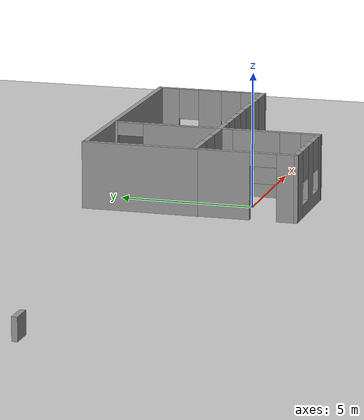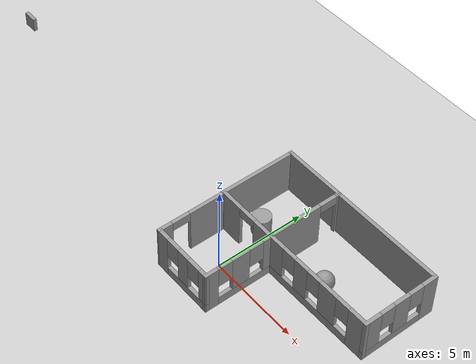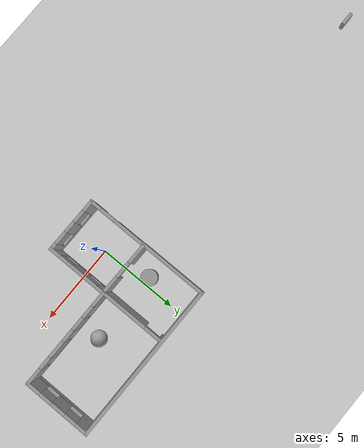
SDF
<sdf version="1.4">
 <world name="default">
  <model name="ground_plane">
   <static>1</static>
   <link name="link">
    <collision name="collision">
     <geometry><plane><normal>0 0 1</normal><size>100 100</size></plane></geometry>
     <surface><friction><ode><mu>100</mu><mu2>50</mu2></ode></friction></surface>
    </collision>
    <visual name="visual">
     <cast_shadows>0</cast_shadows>
     <geometry><plane><normal>0 0 1</normal><size>100 100</size></plane></geometry>
     <material>
      <script><uri>file://media/materials/scripts/gazebo.material</uri><name>Gazebo/Grey</name></script>
     </material>
    </visual>
    <velocity_decay><linear>0</linear><angular>0</angular></velocity_decay>
   </link>
  </model>
  <light name="sun" type="directional">
   <pose>0 0 10 0 -0 0</pose>
   <diffuse>0.8 0.8 0.8 1</diffuse>
   <specular>0.2 0.2 0.2 1</specular>
   <attenuation>
    <range>1000</range>
    <constant>0.9</constant>
    <linear>0.01</linear>
    <quadratic>0.001</quadratic>
   </attenuation>
   <direction>-0.5 0.1 -0.9</direction>
  </light>
  <model name="escenario3">
   <link name="Wall_16">
    <pose>-1.75348 -0.292954 0 0 0 -1.5708</pose>
    <visual name="Wall_16_Visual_0">
     <pose>-0.892642 0 1.25 0 -0 0</pose>
     <geometry><box><size>1.95254 0.2 2.5</size></box></geometry>
     <material>
      <script><uri>file://media/materials/scripts/gazebo.material</uri><name>Gazebo/Grey</name></script>
     </material>
    </visual>
    <collision name="Wall_16_Collision_0">
     <geometry><box><size>1.95254 0.2 2.5</size></box></geometry>
     <pose>-0.892642 0 1.25 0 -0 0</pose>
    </collision>
    <visual name="Wall_16_Visual_1">
     <pose>1.47627 0 1.25 0 -0 0</pose>
     <geometry><box><size>0.785283 0.2 2.5</size></box></geometry>
     <material>
      <script><uri>file://media/materials/scripts/gazebo.material</uri><name>Gazebo/Grey</name></script>
     </material>
    </visual>
    <collision name="Wall_16_Collision_1">
     <geometry><box><size>0.785283 0.2 2.5</size></box></geometry>
     <pose>1.47627 0 1.25 0 -0 0</pose>
    </collision>
    <visual name="Wall_16_Visual_2">
     <pose>0.58363 0 2.25 0 -0 0</pose>
     <geometry><box><size>1 0.2 0.5</size></box></geometry>
     <material>
      <script><uri>file://media/materials/scripts/gazebo.material</uri><name>Gazebo/Grey</name></script>
     </material>
    </visual>
    <collision name="Wall_16_Collision_2">
     <geometry><box><size>1 0.2 0.5</size></box></geometry>
     <pose>0.58363 0 2.25 0 -0 0</pose>
    </collision>
    <velocity_decay><linear>0</linear><angular>0</angular></velocity_decay>
   </link>
   <link name="Wall_17">
    <pose>-0.051503 -2.06741 0 0 0 -0.003255</pose>
    <visual name="Wall_17_Visual_0">
     <pose>-1.41696 0 1.25 0 -0 0</pose>
     <geometry><box><size>0.770362 0.2 2.5</size></box></geometry>
     <material>
      <script><uri>file://media/materials/scripts/gazebo.material</uri><name>Gazebo/Grey</name></script>
     </material>
    </visual>
    <collision name="Wall_17_Collision_0">
     <geometry><box><size>0.770362 0.2 2.5</size></box></geometry>
     <pose>-1.41696 0 1.25 0 -0 0</pose>
    </collision>
    <visual name="Wall_17_Visual_1">
     <pose>0.385181 0 0.25 0 -0 0</pose>
     <geometry><box><size>2.83391 0.2 0.5</size></box></geometry>
     <material>
      <script><uri>file://media/materials/scripts/gazebo.material</uri><name>Gazebo/Grey</name></script>
     </material>
    </visual>
    <collision name="Wall_17_Collision_1">
     <geometry><box><size>2.83391 0.2 0.5</size></box></geometry>
     <pose>0.385181 0 0.25 0 -0 0</pose>
    </collision>
    <visual name="Wall_17_Visual_2">
     <pose>0.124965 0 1.5 0 -0 0</pose>
     <geometry><box><size>0.71348 0.2 2</size></box></geometry>
     <material>
      <script><uri>file://media/materials/scripts/gazebo.material</uri><name>Gazebo/Grey</name></script>
     </material>
    </visual>
    <collision name="Wall_17_Collision_2">
     <geometry><box><size>0.71348 0.2 2</size></box></geometry>
     <pose>0.124965 0 1.5 0 -0 0</pose>
    </collision>
    <visual name="Wall_17_Visual_3">
     <pose>1.54192 0 1.5 0 -0 0</pose>
     <geometry><box><size>0.520432 0.2 2</size></box></geometry>
     <material>
      <script><uri>file://media/materials/scripts/gazebo.material</uri><name>Gazebo/Grey</name></script>
     </material>
    </visual>
    <collision name="Wall_17_Collision_3">
     <geometry><box><size>0.520432 0.2 2</size></box></geometry>
     <pose>1.54192 0 1.5 0 -0 0</pose>
    </collision>
    <visual name="Wall_17_Visual_4">
     <pose>-0.631775 0 1.9 0 -0 0</pose>
     <geometry><box><size>0.8 0.2 1.2</size></box></geometry>
     <material>
      <script><uri>file://media/materials/scripts/gazebo.material</uri><name>Gazebo/Grey</name></script>
     </material>
    </visual>
    <collision name="Wall_17_Collision_4">
     <geometry><box><size>0.8 0.2 1.2</size></box></geometry>
     <pose>-0.631775 0 1.9 0 -0 0</pose>
    </collision>
    <visual name="Wall_17_Visual_5">
     <pose>0.881705 0 1.9 0 -0 0</pose>
     <geometry><box><size>0.8 0.2 1.2</size></box></geometry>
     <material>
      <script><uri>file://media/materials/scripts/gazebo.material</uri><name>Gazebo/Grey</name></script>
     </material>
    </visual>
    <collision name="Wall_17_Collision_5">
     <geometry><box><size>0.8 0.2 1.2</size></box></geometry>
     <pose>0.881705 0 1.9 0 -0 0</pose>
    </collision>
    <velocity_decay><linear>0</linear><angular>0</angular></velocity_decay>
   </link>
   <link name="Wall_18">
    <pose>1.65048 -0.199638 0 0 -0 1.5708</pose>
    <visual name="Wall_18_Visual_0">
     <pose>-1.59549 0 1.25 0 -0 0</pose>
     <geometry><box><size>0.75565 0.2 2.5</size></box></geometry>
     <material>
      <script><uri>file://media/materials/scripts/gazebo.material</uri><name>Gazebo/Grey</name></script>
     </material>
    </visual>
    <collision name="Wall_18_Collision_0">
     <geometry><box><size>0.75565 0.2 2.5</size></box></geometry>
     <pose>-1.59549 0 1.25 0 -0 0</pose>
    </collision>
    <visual name="Wall_18_Visual_1">
     <pose>0.377825 0 0.25 0 -0 0</pose>
     <geometry><box><size>3.19097 0.2 0.5</size></box></geometry>
     <material>
      <script><uri>file://media/materials/scripts/gazebo.material</uri><name>Gazebo/Grey</name></script>
     </material>
    </visual>
    <collision name="Wall_18_Collision_1">
     <geometry><box><size>3.19097 0.2 0.5</size></box></geometry>
     <pose>0.377825 0 0.25 0 -0 0</pose>
    </collision>
    <visual name="Wall_18_Visual_2">
     <pose>0.079398 0 1.5 0 -0 0</pose>
     <geometry><box><size>0.994117 0.2 2</size></box></geometry>
     <material>
      <script><uri>file://media/materials/scripts/gazebo.material</uri><name>Gazebo/Grey</name></script>
     </material>
    </visual>
    <collision name="Wall_18_Collision_2">
     <geometry><box><size>0.994117 0.2 2</size></box></geometry>
     <pose>0.079398 0 1.5 0 -0 0</pose>
    </collision>
    <visual name="Wall_18_Visual_3">
     <pose>1.67488 0 1.5 0 -0 0</pose>
     <geometry><box><size>0.596854 0.2 2</size></box></geometry>
     <material>
      <script><uri>file://media/materials/scripts/gazebo.material</uri><name>Gazebo/Grey</name></script>
     </material>
    </visual>
    <collision name="Wall_18_Collision_3">
     <geometry><box><size>0.596854 0.2 2</size></box></geometry>
     <pose>1.67488 0 1.5 0 -0 0</pose>
    </collision>
    <visual name="Wall_18_Visual_4">
     <pose>-0.817661 0 1.9 0 -0 0</pose>
     <geometry><box><size>0.8 0.2 1.2</size></box></geometry>
     <material>
      <script><uri>file://media/materials/scripts/gazebo.material</uri><name>Gazebo/Grey</name></script>
     </material>
    </visual>
    <collision name="Wall_18_Collision_4">
     <geometry><box><size>0.8 0.2 1.2</size></box></geometry>
     <pose>-0.817661 0 1.9 0 -0 0</pose>
    </collision>
    <visual name="Wall_18_Visual_5">
     <pose>0.976456 0 1.9 0 -0 0</pose>
     <geometry><box><size>0.8 0.2 1.2</size></box></geometry>
     <material>
      <script><uri>file://media/materials/scripts/gazebo.material</uri><name>Gazebo/Grey</name></script>
     </material>
    </visual>
    <collision name="Wall_18_Collision_5">
     <geometry><box><size>0.8 0.2 1.2</size></box></geometry>
     <pose>0.976456 0 1.9 0 -0 0</pose>
    </collision>
    <velocity_decay><linear>0</linear><angular>0</angular></velocity_decay>
   </link>
   <link name="Wall_19">
    <pose>-0.009615 1.69126 0 0 -0 3.131</pose>
    <visual name="Wall_19_Visual_0">
     <pose>-1.13681 0 1.25 0 -0 0</pose>
     <geometry><box><size>1.24731 0.2 2.5</size></box></geometry>
     <material>
      <script><uri>file://media/materials/scripts/gazebo.material</uri><name>Gazebo/Grey</name></script>
     </material>
    </visual>
    <collision name="Wall_19_Collision_0">
     <geometry><box><size>1.24731 0.2 2.5</size></box></geometry>
     <pose>-1.13681 0 1.25 0 -0 0</pose>
    </collision>
    <visual name="Wall_19_Visual_1">
     <pose>1.12365 0 1.25 0 -0 0</pose>
     <geometry><box><size>1.27362 0.2 2.5</size></box></geometry>
     <material>
      <script><uri>file://media/materials/scripts/gazebo.material</uri><name>Gazebo/Grey</name></script>
     </material>
    </visual>
    <collision name="Wall_19_Collision_1">
     <geometry><box><size>1.27362 0.2 2.5</size></box></geometry>
     <pose>1.12365 0 1.25 0 -0 0</pose>
    </collision>
    <visual name="Wall_19_Visual_2">
     <pose>-0.013157 0 2.25 0 -0 0</pose>
     <geometry><box><size>1 0.2 0.5</size></box></geometry>
     <material>
      <script><uri>file://media/materials/scripts/gazebo.material</uri><name>Gazebo/Grey</name></script>
     </material>
    </visual>
    <collision name="Wall_19_Collision_2">
     <geometry><box><size>1 0.2 0.5</size></box></geometry>
     <pose>-0.013157 0 2.25 0 -0 0</pose>
    </collision>
    <velocity_decay><linear>0</linear><angular>0</angular></velocity_decay>
   </link>
   <link name="Wall_21">
    <collision name="Wall_21_Collision">
     <geometry><box><size>4.38627 0.2 2.5</size></box></geometry>
     <pose>0 0 1.25 0 -0 0</pose>
    </collision>
    <visual name="Wall_21_Visual">
     <pose>0 0 1.25 0 -0 0</pose>
     <geometry><box><size>4.38627 0.2 2.5</size></box></geometry>
     <material>
      <script><uri>file://media/materials/scripts/gazebo.material</uri><name>Gazebo/Grey</name></script>
     </material>
    </visual>
    <velocity_decay><linear>0</linear><angular>0</angular></velocity_decay>
    <pose>-1.77304 3.74942 0 0 -0 1.5708</pose>
   </link>
   <link name="Wall_22">
    <collision name="Wall_22_Collision">
     <geometry><box><size>9.90934 0.2 2.5</size></box></geometry>
     <pose>0 0 1.25 0 -0 0</pose>
    </collision>
    <visual name="Wall_22_Visual">
     <pose>0 0 1.25 0 -0 0</pose>
     <geometry><box><size>9.90934 0.2 2.5</size></box></geometry>
     <material>
      <script><uri>file://media/materials/scripts/gazebo.material</uri><name>Gazebo/Grey</name></script>
     </material>
    </visual>
    <velocity_decay><linear>0</linear><angular>0</angular></velocity_decay>
    <pose>3.08163 5.84256 0 0 -0 0</pose>
   </link>
   <link name="Wall_23">
    <pose>7.9363 3.76701 0 0 0 -1.5708</pose>
    <visual name="Wall_23_Visual_0">
     <pose>-1.74514 0 1.25 0 -0 0</pose>
     <geometry><box><size>0.860974 0.2 2.5</size></box></geometry>
     <material>
      <script><uri>file://media/materials/scripts/gazebo.material</uri><name>Gazebo/Grey</name></script>
     </material>
    </visual>
    <collision name="Wall_23_Collision_0">
     <geometry><box><size>0.860974 0.2 2.5</size></box></geometry>
     <pose>-1.74514 0 1.25 0 -0 0</pose>
    </collision>
    <visual name="Wall_23_Visual_1">
     <pose>0.430487 0 0.25 0 -0 0</pose>
     <geometry><box><size>3.49027 0.2 0.5</size></box></geometry>
     <material>
      <script><uri>file://media/materials/scripts/gazebo.material</uri><name>Gazebo/Grey</name></script>
     </material>
    </visual>
    <collision name="Wall_23_Collision_1">
     <geometry><box><size>3.49027 0.2 0.5</size></box></geometry>
     <pose>0.430487 0 0.25 0 -0 0</pose>
    </collision>
    <visual name="Wall_23_Visual_2">
     <pose>-0.052768 0 1.5 0 -0 0</pose>
     <geometry><box><size>0.923759 0.2 2</size></box></geometry>
     <material>
      <script><uri>file://media/materials/scripts/gazebo.material</uri><name>Gazebo/Grey</name></script>
     </material>
    </visual>
    <collision name="Wall_23_Collision_2">
     <geometry><box><size>0.923759 0.2 2</size></box></geometry>
     <pose>-0.052768 0 1.5 0 -0 0</pose>
    </collision>
    <visual name="Wall_23_Visual_3">
     <pose>1.69237 0 1.5 0 -0 0</pose>
     <geometry><box><size>0.96651 0.2 2</size></box></geometry>
     <material>
      <script><uri>file://media/materials/scripts/gazebo.material</uri><name>Gazebo/Grey</name></script>
     </material>
    </visual>
    <collision name="Wall_23_Collision_3">
     <geometry><box><size>0.96651 0.2 2</size></box></geometry>
     <pose>1.69237 0 1.5 0 -0 0</pose>
    </collision>
    <visual name="Wall_23_Visual_4">
     <pose>-0.914648 0 1.9 0 -0 0</pose>
     <geometry><box><size>0.8 0.2 1.2</size></box></geometry>
     <material>
      <script><uri>file://media/materials/scripts/gazebo.material</uri><name>Gazebo/Grey</name></script>
     </material>
    </visual>
    <collision name="Wall_23_Collision_4">
     <geometry><box><size>0.8 0.2 1.2</size></box></geometry>
     <pose>-0.914648 0 1.9 0 -0 0</pose>
    </collision>
    <visual name="Wall_23_Visual_5">
     <pose>0.809112 0 1.9 0 -0 0</pose>
     <geometry><box><size>0.8 0.2 1.2</size></box></geometry>
     <material>
      <script><uri>file://media/materials/scripts/gazebo.material</uri><name>Gazebo/Grey</name></script>
     </material>
    </visual>
    <collision name="Wall_23_Collision_5">
     <geometry><box><size>0.8 0.2 1.2</size></box></geometry>
     <pose>0.809112 0 1.9 0 -0 0</pose>
    </collision>
    <velocity_decay><linear>0</linear><angular>0</angular></velocity_decay>
   </link>
   <link name="Wall_24">
    <pose>4.7878 1.69147 0 0 -0 3.14159</pose>
    <visual name="Wall_24_Visual_0">
     <pose>-2.69492 0 1.25 0 -0 0</pose>
     <geometry><box><size>1.10715 0.2 2.5</size></box></geometry>
     <material>
      <script><uri>file://media/materials/scripts/gazebo.material</uri><name>Gazebo/Grey</name></script>
     </material>
    </visual>
    <collision name="Wall_24_Collision_0">
     <geometry><box><size>1.10715 0.2 2.5</size></box></geometry>
     <pose>-2.69492 0 1.25 0 -0 0</pose>
    </collision>
    <visual name="Wall_24_Visual_1">
     <pose>0.553575 0 0.25 0 -0 0</pose>
     <geometry><box><size>5.38985 0.2 0.5</size></box></geometry>
     <material>
      <script><uri>file://media/materials/scripts/gazebo.material</uri><name>Gazebo/Grey</name></script>
     </material>
    </visual>
    <collision name="Wall_24_Collision_1">
     <geometry><box><size>5.38985 0.2 0.5</size></box></geometry>
     <pose>0.553575 0 0.25 0 -0 0</pose>
    </collision>
    <visual name="Wall_24_Visual_2">
     <pose>-0.791522 0 1.5 0 -0 0</pose>
     <geometry><box><size>1.09965 0.2 2</size></box></geometry>
     <material>
      <script><uri>file://media/materials/scripts/gazebo.material</uri><name>Gazebo/Grey</name></script>
     </material>
    </visual>
    <collision name="Wall_24_Collision_2">
     <geometry><box><size>1.09965 0.2 2</size></box></geometry>
     <pose>-0.791522 0 1.5 0 -0 0</pose>
    </collision>
    <visual name="Wall_24_Visual_3">
     <pose>0.985005 0 1.5 0 -0 0</pose>
     <geometry><box><size>0.853402 0.2 2</size></box></geometry>
     <material>
      <script><uri>file://media/materials/scripts/gazebo.material</uri><name>Gazebo/Grey</name></script>
     </material>
    </visual>
    <collision name="Wall_24_Collision_3">
     <geometry><box><size>0.853402 0.2 2</size></box></geometry>
     <pose>0.985005 0 1.5 0 -0 0</pose>
    </collision>
    <visual name="Wall_24_Visual_4">
     <pose>2.7301 0 1.5 0 -0 0</pose>
     <geometry><box><size>1.03679 0.2 2</size></box></geometry>
     <material>
      <script><uri>file://media/materials/scripts/gazebo.material</uri><name>Gazebo/Grey</name></script>
     </material>
    </visual>
    <collision name="Wall_24_Collision_4">
     <geometry><box><size>1.03679 0.2 2</size></box></geometry>
     <pose>2.7301 0 1.5 0 -0 0</pose>
    </collision>
    <visual name="Wall_24_Visual_5">
     <pose>-1.74135 0 1.9 0 -0 0</pose>
     <geometry><box><size>0.8 0.2 1.2</size></box></geometry>
     <material>
      <script><uri>file://media/materials/scripts/gazebo.material</uri><name>Gazebo/Grey</name></script>
     </material>
    </visual>
    <collision name="Wall_24_Collision_5">
     <geometry><box><size>0.8 0.2 1.2</size></box></geometry>
     <pose>-1.74135 0 1.9 0 -0 0</pose>
    </collision>
    <visual name="Wall_24_Visual_6">
     <pose>0.158304 0 1.9 0 -0 0</pose>
     <geometry><box><size>0.8 0.2 1.2</size></box></geometry>
     <material>
      <script><uri>file://media/materials/scripts/gazebo.material</uri><name>Gazebo/Grey</name></script>
     </material>
    </visual>
    <collision name="Wall_24_Collision_6">
     <geometry><box><size>0.8 0.2 1.2</size></box></geometry>
     <pose>0.158304 0 1.9 0 -0 0</pose>
    </collision>
    <visual name="Wall_24_Visual_7">
     <pose>1.81171 0 1.9 0 -0 0</pose>
     <geometry><box><size>0.8 0.2 1.2</size></box></geometry>
     <material>
      <script><uri>file://media/materials/scripts/gazebo.material</uri><name>Gazebo/Grey</name></script>
     </material>
    </visual>
    <collision name="Wall_24_Collision_7">
     <geometry><box><size>0.8 0.2 1.2</size></box></geometry>
     <pose>1.81171 0 1.9 0 -0 0</pose>
    </collision>
    <velocity_decay><linear>0</linear><angular>0</angular></velocity_decay>
   </link>
   <link name="Wall_25">
    <pose>1.6393 3.74942 0 0 -0 1.5708</pose>
    <visual name="Wall_25_Visual_0">
     <pose>-0.634207 0 1.25 0 -0 0</pose>
     <geometry><box><size>3.04765 0.2 2.5</size></box></geometry>
     <material>
      <script><uri>file://media/materials/scripts/gazebo.material</uri><name>Gazebo/Grey</name></script>
     </material>
    </visual>
    <collision name="Wall_25_Collision_0">
     <geometry><box><size>3.04765 0.2 2.5</size></box></geometry>
     <pose>-0.634207 0 1.25 0 -0 0</pose>
    </collision>
    <visual name="Wall_25_Visual_1">
     <pose>2.02383 0 1.25 0 -0 0</pose>
     <geometry><box><size>0.268413 0.2 2.5</size></box></geometry>
     <material>
      <script><uri>file://media/materials/scripts/gazebo.material</uri><name>Gazebo/Grey</name></script>
     </material>
    </visual>
    <collision name="Wall_25_Collision_1">
     <geometry><box><size>0.268413 0.2 2.5</size></box></geometry>
     <pose>2.02383 0 1.25 0 -0 0</pose>
    </collision>
    <visual name="Wall_25_Visual_2">
     <pose>1.38962 0 2.25 0 -0 0</pose>
     <geometry><box><size>1 0.2 0.5</size></box></geometry>
     <material>
      <script><uri>file://media/materials/scripts/gazebo.material</uri><name>Gazebo/Grey</name></script>
     </material>
    </visual>
    <collision name="Wall_25_Collision_2">
     <geometry><box><size>1 0.2 0.5</size></box></geometry>
     <pose>1.38962 0 2.25 0 -0 0</pose>
    </collision>
    <velocity_decay><linear>0</linear><angular>0</angular></velocity_decay>
   </link>
   <link name="Window_5">
    <collision name="Window_5_Collision">
     <geometry><box><size>0.8 0.2 0.8</size></box></geometry>
     <pose>0 0 0.4 0 -0 0</pose>
    </collision>
    <visual name="Window_5_Visual">
     <pose>0 0 0.4 0 -0 0</pose>
     <geometry><box><size>0.8 0.2 0.8</size></box></geometry>
     <material>
      <script><uri>file://media/materials/scripts/gazebo.material</uri><name>Gazebo/Grey</name></script>
     </material>
    </visual>
    <velocity_decay><linear>0</linear><angular>0</angular></velocity_decay>
    <pose>-19.5031 2.25433 0.5 0 -0 0</pose>
   </link>
   <static>1</static>
  </model>
  <physics type="ode">
   <max_step_size>0.001</max_step_size>
   <real_time_factor>1</real_time_factor>
   <real_time_update_rate>1000</real_time_update_rate>
   <gravity>0 0 -9.8</gravity>
  </physics>
  <scene><ambient>0.4 0.4 0.4 1</ambient><background>0.7 0.7 0.7 1</background><shadows>1</shadows></scene>
  <spherical_coordinates>
   <surface_model>EARTH_WGS84</surface_model>
   <latitude_deg>0</latitude_deg>
   <longitude_deg>0</longitude_deg>
   <elevation>0</elevation>
   <heading_deg>0</heading_deg>
  </spherical_coordinates>
  <model name="unit_sphere_1">
   <pose>4 3 0.5 0 -0 0</pose>
   <link name="link">
    <inertial>
     <mass>1</mass>
     <inertia><ixx>1</ixx><ixy>0</ixy><ixz>0</ixz><iyy>1</iyy><iyz>0</iyz><izz>1</izz></inertia>
    </inertial>
    <collision name="collision"><geometry><sphere><radius>0.5</radius></sphere></geometry></collision>
    <visual name="visual">
     <geometry><sphere><radius>0.5</radius></sphere></geometry>
     <material>
      <script><uri>file://media/materials/scripts/gazebo.material</uri><name>Gazebo/Grey</name></script>
     </material>
    </visual>
    <velocity_decay><linear>0</linear><angular>0</angular></velocity_decay>
   </link>
   <static>0</static>
  </model>
  <model name="unit_cylinder_1">
   <pose>-0.506765 3 0.499992 0 -0 0</pose>
   <link name="link">
    <inertial>
     <mass>1</mass>
     <inertia><ixx>1</ixx><ixy>0</ixy><ixz>0</ixz><iyy>1</iyy><iyz>0</iyz><izz>1</izz></inertia>
    </inertial>
    <collision name="collision">
     <geometry><cylinder><radius>0.5</radius><length>1</length></cylinder></geometry>
    </collision>
    <visual name="visual">
     <geometry><cylinder><radius>0.5</radius><length>1</length></cylinder></geometry>
     <material>
      <script><uri>file://media/materials/scripts/gazebo.material</uri><name>Gazebo/Grey</name></script>
     </material>
    </visual>
    <velocity_decay><linear>0</linear><angular>0</angular></velocity_decay>
   </link>
   <static>0</static>
  </model>
 </world>
</sdf>
